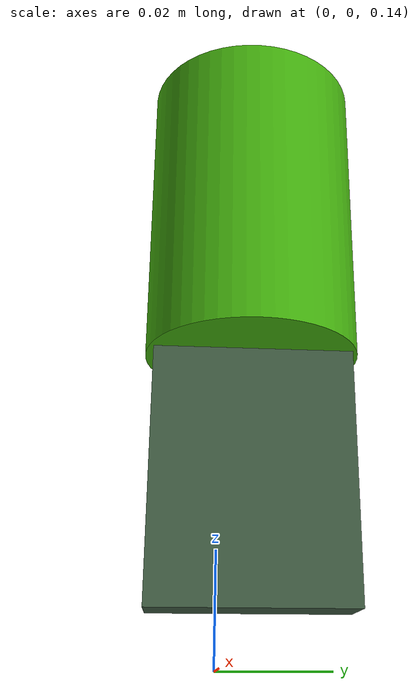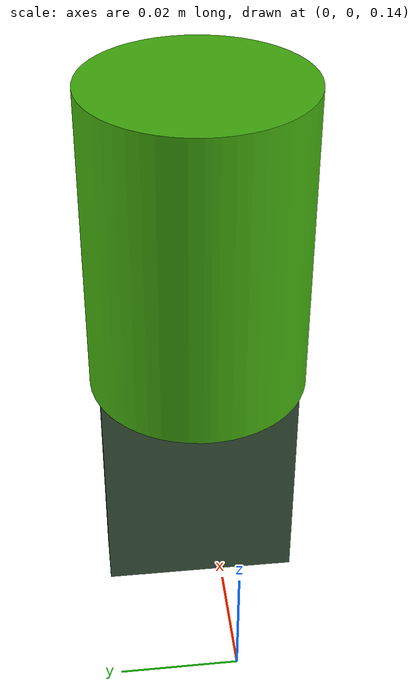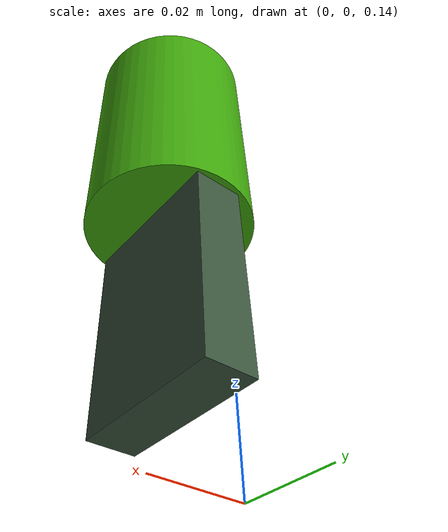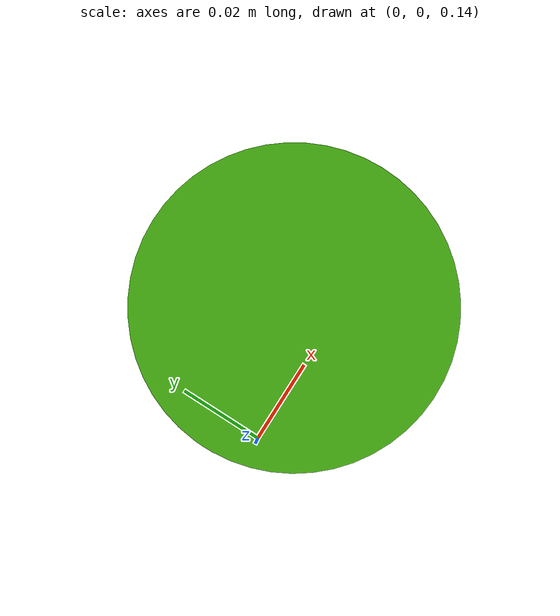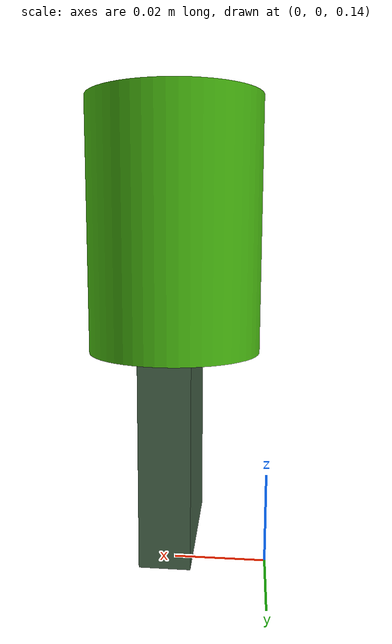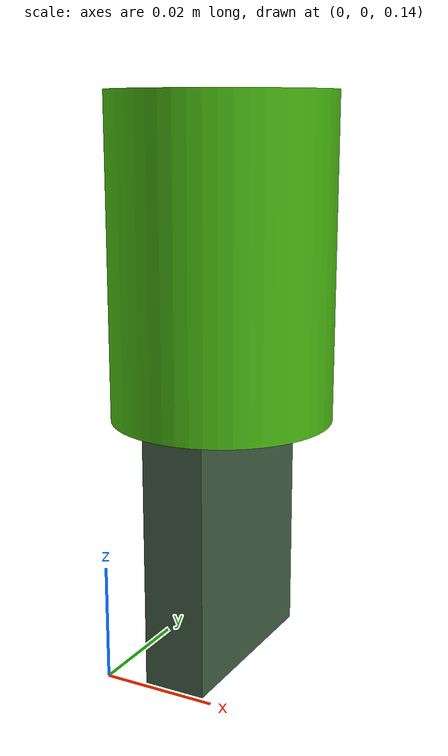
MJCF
<?xml version="1.0" encoding="utf-8"?>
<mujoco model="AssembledModel">
  <compiler meshdir="."/>
  <asset>
    <mesh name="pa1" file="pa1.obj"/>
    <mesh name="pa2" file="pa2.obj"/>
  </asset>
  <worldbody>
    <!--body name="root" pos="0.01725 -0.0130 0.238"  euler="0 0 90"-->
    <body name="root" pos="0.03725 -0.0130 0.238"  euler="0 0 90">
    <body name="pa1" pos="0 0 0">
      <geom mesh="pa1" type="mesh" rgba="0.235294 0.341176 0.247059 1" contype="0" conaffinity="0" group="2"/>
      <geom mesh="pa1" type="mesh" rgba="0 0 0 0" contype="1" conaffinity="1" group="3"/>
    </body>
    <body name="pa2" pos="0 0 0">
      <geom mesh="pa2" type="mesh" rgba="0.258824 0.674510 0.050980 1" contype="0" conaffinity="0" group="2"/>
      <geom mesh="pa2" type="mesh" rgba="0 0 0 0" contype="1" conaffinity="1" group="3"/>
    </body>
    </body>
  </worldbody>
</mujoco>
